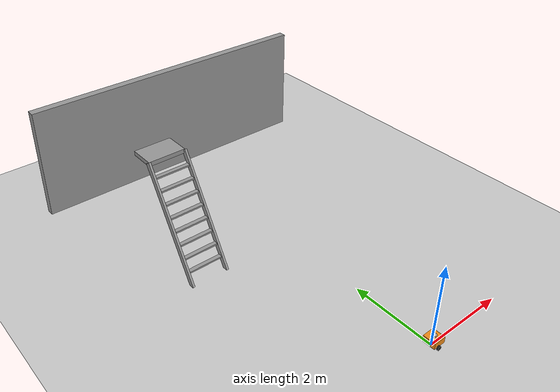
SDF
<sdf version="1.7">
 <world name="default">
  <light name="sun" type="directional">
   <pose>0 0 10 0 -0 0</pose>
   <diffuse>0.8 0.8 0.8 1</diffuse>
   <specular>0.2 0.2 0.2 1</specular>
   <attenuation>
    <range>1000</range>
    <constant>0.9</constant>
    <linear>0.01</linear>
    <quadratic>0.001</quadratic>
   </attenuation>
   <direction>-0.5 0.1 -0.9</direction>
   <spot><inner_angle>0</inner_angle><outer_angle>0</outer_angle><falloff>0</falloff></spot>
  </light>
  <model name="ground_plane">
   <static>1</static>
   <link name="link">
    <collision name="collision">
     <geometry><plane><normal>0 0 1</normal><size>100 100</size></plane></geometry>
     <surface>
      <contact><collide_bitmask>65535</collide_bitmask></contact>
      <friction><ode><mu>100</mu><mu2>50</mu2></ode></friction>
     </surface>
    </collision>
    <visual name="visual">
     <cast_shadows>0</cast_shadows>
     <geometry><plane><normal>0 0 1</normal><size>100 100</size></plane></geometry>
     <material>
      <script><uri>file://media/materials/scripts/gazebo.material</uri><name>Gazebo/Grey</name></script>
     </material>
    </visual>
   </link>
  </model>
  <gravity>0 0 -9.8</gravity>
  <magnetic_field>6e-06 2.3e-05 -4.2e-05</magnetic_field>
  <atmosphere type="adiabatic"/>
  <physics type="ode">
   <max_step_size>0.001</max_step_size>
   <real_time_factor>1</real_time_factor>
   <real_time_update_rate>1000</real_time_update_rate>
  </physics>
  <scene><ambient>0.4 0.4 0.4 1</ambient><background>0.7 0.7 0.7 1</background><shadows>1</shadows></scene>
  <spherical_coordinates>
   <surface_model>EARTH_WGS84</surface_model>
   <latitude_deg>0</latitude_deg>
   <longitude_deg>0</longitude_deg>
   <elevation>0</elevation>
   <heading_deg>0</heading_deg>
  </spherical_coordinates>
  <model name="robot">
   <link name="base_link">
    <inertial>
     <pose>0.062857 0 0.078571 0 -0 0</pose>
     <mass>0.7</mass>
     <inertia>
      <ixx>0.0064169</ixx>
      <ixy>0</ixy>
      <ixz>0.000707143</ixz>
      <iyy>0.00711119</iyy>
      <iyz>0</iyz>
      <izz>0.00841929</izz>
     </inertia>
    </inertial>
    <collision name="base_link_fixed_joint_lump__chassis_collision">
     <pose>0.05 0 0.075 0 -0 0</pose>
     <geometry><box><size>0.3 0.3 0.15</size></box></geometry>
    </collision>
    <collision name="base_link_fixed_joint_lump__caster_wheel_collision_1">
     <pose>0.14 0 0 0 -0 0</pose>
     <geometry><sphere><radius>0.05</radius></sphere></geometry>
     <surface><friction><ode><mu>0.001</mu><mu2>0.001</mu2></ode></friction></surface>
    </collision>
    <collision name="base_link_fixed_joint_lump__lidar_frame_collision_2">
     <pose>0.05 0 0.175 0 -0 0</pose>
     <geometry><cylinder><length>0.04</length><radius>0.05</radius></cylinder></geometry>
    </collision>
    <visual name="base_link_fixed_joint_lump__chassis_visual">
     <pose>0.05 0 0.075 0 -0 0</pose>
     <geometry><box><size>0.3 0.3 0.15</size></box></geometry>
     <material>
      <script><name>Gazebo/Orange</name><uri>file://media/materials/scripts/gazebo.material</uri></script>
     </material>
    </visual>
    <visual name="base_link_fixed_joint_lump__caster_wheel_visual_1">
     <pose>0.14 0 0 0 -0 0</pose>
     <geometry><sphere><radius>0.05</radius></sphere></geometry>
     <material>
      <script><name>Gazebo/White</name><uri>file://media/materials/scripts/gazebo.material</uri></script>
     </material>
    </visual>
    <visual name="base_link_fixed_joint_lump__lidar_frame_visual_2">
     <pose>0.05 0 0.175 0 -0 0</pose>
     <geometry><cylinder><length>0.04</length><radius>0.05</radius></cylinder></geometry>
    </visual>
    <sensor name="laser" type="ray">
     <visualize>1</visualize>
     <ray>
      <scan>
       <horizontal>
        <samples>360</samples>
        <resolution>1</resolution>
        <min_angle>-3.14</min_angle>
        <max_angle>3.14</max_angle>
       </horizontal>
       <vertical><samples>1</samples><min_angle>0</min_angle><max_angle>0</max_angle></vertical>
      </scan>
      <range><min>0.3</min><max>12</max></range>
     </ray>
     <plugin name="lidar_controller" filename="libgazebo_ros_ray_sensor.so">
      <ros><argument>~/out:=scan</argument></ros>
      <outpuType>sensor_msgs/LaserScan</outpuType>
      <alwaysOn>1</alwaysOn>
      <updateRate>10.0</updateRate>
      <frameName>lidar_frame</frameName>
      <robotNamespace>/</robotNamespace>
     </plugin>
     <pose>0.05 0 0.175 0 -0 0</pose>
     <updateRate>10</updateRate>
    </sensor>
   </link>
   <joint name="left_wheel_joint" type="revolute">
    <pose relative_to="base_link">0 0.175 0 -1.5708 0 0</pose>
    <parent>base_link</parent>
    <child>left_wheel</child>
    <axis>
     <xyz>0 0 1</xyz>
     <limit><lower>-1e+16</lower><upper>1e+16</upper></limit>
     <dynamics><spring_reference>0</spring_reference><spring_stiffness>0</spring_stiffness></dynamics>
    </axis>
   </joint>
   <link name="left_wheel">
    <pose relative_to="left_wheel_joint">0 0 0 0 -0 0</pose>
    <inertial>
     <mass>0.1</mass>
     <inertia>
      <ixx>7.58333e-05</ixx>
      <ixy>0</ixy>
      <ixz>0</ixz>
      <iyy>7.58333e-05</iyy>
      <iyz>0</iyz>
      <izz>0.000125</izz>
     </inertia>
    </inertial>
    <collision name="left_wheel_collision">
     <geometry><cylinder><length>0.04</length><radius>0.05</radius></cylinder></geometry>
    </collision>
    <visual name="left_wheel_visual">
     <geometry><cylinder><length>0.04</length><radius>0.05</radius></cylinder></geometry>
     <material>
      <script><name>Gazebo/Black</name><uri>file://media/materials/scripts/gazebo.material</uri></script>
     </material>
    </visual>
   </link>
   <joint name="right_wheel_joint" type="revolute">
    <pose relative_to="base_link">0 -0.175 0 1.5708 -0 0</pose>
    <parent>base_link</parent>
    <child>right_wheel</child>
    <axis>
     <xyz>0 0 -1</xyz>
     <limit><lower>-1e+16</lower><upper>1e+16</upper></limit>
     <dynamics><spring_reference>0</spring_reference><spring_stiffness>0</spring_stiffness></dynamics>
    </axis>
   </joint>
   <link name="right_wheel">
    <pose relative_to="right_wheel_joint">0 0 0 0 -0 0</pose>
    <inertial>
     <mass>0.1</mass>
     <inertia>
      <ixx>7.58333e-05</ixx>
      <ixy>0</ixy>
      <ixz>0</ixz>
      <iyy>7.58333e-05</iyy>
      <iyz>0</iyz>
      <izz>0.000125</izz>
     </inertia>
    </inertial>
    <collision name="right_wheel_collision">
     <geometry><cylinder><length>0.04</length><radius>0.05</radius></cylinder></geometry>
    </collision>
    <visual name="right_wheel_visual">
     <geometry><cylinder><length>0.04</length><radius>0.05</radius></cylinder></geometry>
     <material>
      <script><name>Gazebo/Black</name><uri>file://media/materials/scripts/gazebo.material</uri></script>
     </material>
    </visual>
   </link>
   <static>0</static>
   <plugin name="differential_drive_controller" filename="libgazebo_ros_diff_drive.so">
    <alwaysOn>1</alwaysOn>
    <updateRate>50.0</updateRate>
    <leftJoint>left_wheel_joint</leftJoint>
    <rightJoint>right_wheel_joint</rightJoint>
    <wheelSeparation>0.35</wheelSeparation>
    <wheelDiameter>0.1</wheelDiameter>
    <torque>5.0</torque>
    <commandTopic>cmd_vel</commandTopic>
    <odometryTopic>odom</odometryTopic>
    <odometryFrame>odom</odometryFrame>
    <robotBaseFrame>base_link</robotBaseFrame>
    <robotNamespace>/</robotNamespace>
   </plugin>
   <pose>0.005472 1.6e-05 0.05 0 1e-06 0.000158</pose>
  </model>
  <model name="grey_wall">
   <static>1</static>
   <link name="link">
    <pose>0 0 1.4 0 -0 0</pose>
    <collision name="collision"><geometry><box><size>7.5 0.2 2.8</size></box></geometry></collision>
    <visual name="visual">
     <cast_shadows>0</cast_shadows>
     <geometry><box><size>7.5 0.2 2.8</size></box></geometry>
     <material>
      <script>
       <uri>model://grey_wall/materials/scripts</uri>
       <uri>model://grey_wall/materials/textures</uri>
       <name>vrc/grey_wall</name>
      </script>
     </material>
    </visual>
   </link>
   <pose>-0.192304 8.69091 0 0 -0 0</pose>
  </model>
  <model name="ladder_60deg_0rails">
   <static>1</static>
   <link name="step0">
    <pose>0 0.15396 0.266667 0 -0 0</pose>
    <inertial>
     <mass>9.75482</mass>
     <inertia>
      <ixx>0.00957124</ixx>
      <iyy>0.65963</iyy>
      <izz>0.666842</izz>
      <ixy>0</ixy>
      <ixz>0</ixz>
      <iyz>0</iyz>
     </inertia>
    </inertial>
    <collision name="collision"><geometry><box><size>0.9 0.1016 0.0381</size></box></geometry></collision>
    <visual name="visual">
     <geometry><box><size>0.9 0.1016 0.0381</size></box></geometry>
     <material>
      <script><uri>file://media/materials/scripts/gazebo.material</uri><name>Gazebo/Grey</name></script>
     </material>
    </visual>
   </link>
   <link name="step1">
    <pose>0 0.30792 0.533333 0 -0 0</pose>
    <inertial>
     <mass>9.75482</mass>
     <inertia>
      <ixx>0.00957124</ixx>
      <iyy>0.65963</iyy>
      <izz>0.666842</izz>
      <ixy>0</ixy>
      <ixz>0</ixz>
      <iyz>0</iyz>
     </inertia>
    </inertial>
    <collision name="collision"><geometry><box><size>0.9 0.1016 0.0381</size></box></geometry></collision>
    <visual name="visual">
     <geometry><box><size>0.9 0.1016 0.0381</size></box></geometry>
     <material>
      <script><uri>file://media/materials/scripts/gazebo.material</uri><name>Gazebo/Grey</name></script>
     </material>
    </visual>
   </link>
   <link name="step2">
    <pose>0 0.46188 0.8 0 -0 0</pose>
    <inertial>
     <mass>9.75482</mass>
     <inertia>
      <ixx>0.00957124</ixx>
      <iyy>0.65963</iyy>
      <izz>0.666842</izz>
      <ixy>0</ixy>
      <ixz>0</ixz>
      <iyz>0</iyz>
     </inertia>
    </inertial>
    <collision name="collision"><geometry><box><size>0.9 0.1016 0.0381</size></box></geometry></collision>
    <visual name="visual">
     <geometry><box><size>0.9 0.1016 0.0381</size></box></geometry>
     <material>
      <script><uri>file://media/materials/scripts/gazebo.material</uri><name>Gazebo/Grey</name></script>
     </material>
    </visual>
   </link>
   <link name="step3">
    <pose>0 0.61584 1.06667 0 -0 0</pose>
    <inertial>
     <mass>9.75482</mass>
     <inertia>
      <ixx>0.00957124</ixx>
      <iyy>0.65963</iyy>
      <izz>0.666842</izz>
      <ixy>0</ixy>
      <ixz>0</ixz>
      <iyz>0</iyz>
     </inertia>
    </inertial>
    <collision name="collision"><geometry><box><size>0.9 0.1016 0.0381</size></box></geometry></collision>
    <visual name="visual">
     <geometry><box><size>0.9 0.1016 0.0381</size></box></geometry>
     <material>
      <script><uri>file://media/materials/scripts/gazebo.material</uri><name>Gazebo/Grey</name></script>
     </material>
    </visual>
   </link>
   <link name="step4">
    <pose>0 0.7698 1.33333 0 -0 0</pose>
    <inertial>
     <mass>9.75482</mass>
     <inertia>
      <ixx>0.00957124</ixx>
      <iyy>0.65963</iyy>
      <izz>0.666842</izz>
      <ixy>0</ixy>
      <ixz>0</ixz>
      <iyz>0</iyz>
     </inertia>
    </inertial>
    <collision name="collision"><geometry><box><size>0.9 0.1016 0.0381</size></box></geometry></collision>
    <visual name="visual">
     <geometry><box><size>0.9 0.1016 0.0381</size></box></geometry>
     <material>
      <script><uri>file://media/materials/scripts/gazebo.material</uri><name>Gazebo/Grey</name></script>
     </material>
    </visual>
   </link>
   <link name="step5">
    <pose>0 0.92376 1.6 0 -0 0</pose>
    <inertial>
     <mass>9.75482</mass>
     <inertia>
      <ixx>0.00957124</ixx>
      <iyy>0.65963</iyy>
      <izz>0.666842</izz>
      <ixy>0</ixy>
      <ixz>0</ixz>
      <iyz>0</iyz>
     </inertia>
    </inertial>
    <collision name="collision"><geometry><box><size>0.9 0.1016 0.0381</size></box></geometry></collision>
    <visual name="visual">
     <geometry><box><size>0.9 0.1016 0.0381</size></box></geometry>
     <material>
      <script><uri>file://media/materials/scripts/gazebo.material</uri><name>Gazebo/Grey</name></script>
     </material>
    </visual>
   </link>
   <link name="step6">
    <pose>0 1.07772 1.86667 0 -0 0</pose>
    <inertial>
     <mass>9.75482</mass>
     <inertia>
      <ixx>0.00957124</ixx>
      <iyy>0.65963</iyy>
      <izz>0.666842</izz>
      <ixy>0</ixy>
      <ixz>0</ixz>
      <iyz>0</iyz>
     </inertia>
    </inertial>
    <collision name="collision"><geometry><box><size>0.9 0.1016 0.0381</size></box></geometry></collision>
    <visual name="visual">
     <geometry><box><size>0.9 0.1016 0.0381</size></box></geometry>
     <material>
      <script><uri>file://media/materials/scripts/gazebo.material</uri><name>Gazebo/Grey</name></script>
     </material>
    </visual>
   </link>
   <link name="step7">
    <pose>0 1.23168 2.13333 0 -0 0</pose>
    <inertial>
     <mass>9.75482</mass>
     <inertia>
      <ixx>0.00957124</ixx>
      <iyy>0.65963</iyy>
      <izz>0.666842</izz>
      <ixy>0</ixy>
      <ixz>0</ixz>
      <iyz>0</iyz>
     </inertia>
    </inertial>
    <collision name="collision"><geometry><box><size>0.9 0.1016 0.0381</size></box></geometry></collision>
    <visual name="visual">
     <geometry><box><size>0.9 0.1016 0.0381</size></box></geometry>
     <material>
      <script><uri>file://media/materials/scripts/gazebo.material</uri><name>Gazebo/Grey</name></script>
     </material>
    </visual>
   </link>
   <link name="landing">
    <pose>0 1.68564 2.4 0 -0 0</pose>
    <inertial>
     <mass>57.6072</mass>
     <inertia><ixx>1.73518</ixx><iyy>3.89545</iyy><izz>5.6167</izz><ixy>0</ixy><ixz>0</ixz><iyz>0</iyz></inertia>
    </inertial>
    <collision name="collision"><geometry><box><size>0.9 0.6 0.1016</size></box></geometry></collision>
    <visual name="visual">
     <geometry><box><size>0.9 0.6 0.1016</size></box></geometry>
     <material>
      <script><uri>file://media/materials/scripts/gazebo.material</uri><name>Gazebo/Grey</name></script>
     </material>
    </visual>
   </link>
   <link name="left_side_wall">
    <pose>-0.45 0.69282 1.2 1.0472 -0 0</pose>
    <collision name="collision"><geometry><box><size>0.0508 2.85128 0.13</size></box></geometry></collision>
    <visual name="visual">
     <geometry><box><size>0.0508 2.85128 0.13</size></box></geometry>
     <material>
      <script><uri>file://media/materials/scripts/gazebo.material</uri><name>Gazebo/Grey</name></script>
     </material>
    </visual>
   </link>
   <link name="right_side_wall">
    <pose>0.45 0.69282 1.2 1.0472 -0 0</pose>
    <collision name="collision"><geometry><box><size>0.0508 2.85128 0.13</size></box></geometry></collision>
    <visual name="visual">
     <geometry><box><size>0.0508 2.85128 0.13</size></box></geometry>
     <material>
      <script><uri>file://media/materials/scripts/gazebo.material</uri><name>Gazebo/Grey</name></script>
     </material>
    </visual>
   </link>
   <pose>-2.22889 4.30738 0 0 -0 0</pose>
  </model>
 </world>
</sdf>
